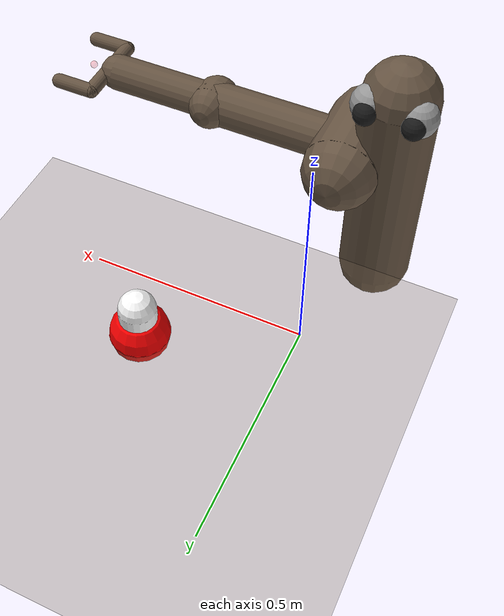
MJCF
<mujoco model="arm3d">
  <compiler inertiafromgeom="true" angle="radian" coordinate="local"/>
  <option timestep="0.01" gravity="0 0 0" iterations="20" ls_iterations="6" integrator="Euler"/>

  <default>
    <joint armature='0.04' damping="1" limited="true"/>
    <geom friction=".8 .1 .1" density="300" margin="0.002" condim="3" contype="0" conaffinity="0" rgba="0.4 0.33 0.26 1.0"/>
  </default>

  <custom>
    <!-- brax custom params -->
    <numeric data="3000" name="constraint_stiffness"/>
    <numeric data="2000" name="constraint_limit_stiffness"/>
    <numeric data="10" name="constraint_ang_damping"/>
    <numeric data="50" name="constraint_vel_damping"/>
    <numeric data="0" name="ang_damping"/>
    <numeric data="-1" name="vel_damping"/>
    <numeric data="1" name="spring_mass_scale"/>
    <numeric data="1" name="spring_inertia_scale"/>
    <numeric data="10" name="solver_maxls"/>
  </custom>

  <visual>
    <headlight ambient="0.5 0.5 0.5" diffuse="0.9 0.9 0.9" specular="0.2 0.2 0.2"/>
    <map znear="0.01" zfar="30"/>
  </visual>

  <asset>
    <texture builtin="gradient" height="100" rgb1=".58 .55 .50" rgb2="0.12 0.10 0.08" type="skybox" width="100"/>
    <texture builtin="checker" height="100" name="texplane" rgb1="0.90 0.88 0.82" rgb2="0.84 0.82 0.76" type="2d" width="100"/>
    <material name="MatPlane" reflectance="0.12" shininess="0.08" specular="0.08" texrepeat="15 15" texture="texplane"/>
  </asset>

  <worldbody>
    <light diffuse=".5 .5 .5" pos="0 0 3" dir="0 0 -1"/>
    <geom name="table" type="plane" pos="0 0.5 -0.325" size="1 1 0.1" contype="1" conaffinity="0" material="MatPlane"/>
    <camera name="fixedfar" pos="0 -1.5 1.5" zaxis="0 -1 1" mode="fixed"/>

    <body name="r_shoulder_pan_link" pos="0 -0.6 0">
      <geom name="e1" type="sphere" rgba="0.6 0.6 0.6 1" pos="-0.06 0.05 0.2" size="0.05" />
      <geom name="e2" type="sphere" rgba="0.6 0.6 0.6 1" pos=" 0.06 0.05 0.2" size="0.05" />
      <geom name="e1p" type="sphere" rgba="0.1 0.1 0.1 1" pos="-0.06 0.09 0.2" size="0.03" />
      <geom name="e2p" type="sphere" rgba="0.1 0.1 0.1 1" pos=" 0.06 0.09 0.2" size="0.03" />
      <geom name="sp" type="capsule" fromto="0 0 -0.4 0 0 0.2" size="0.1" />
      <joint name="r_shoulder_pan_joint" type="hinge" pos="0 0 0" axis="0 0 1" range="-2.2854 1.714602" damping="1.0" />

      <body name="r_shoulder_lift_link" pos="0.1 0 0">
        <geom name="sl" type="capsule" fromto="0 -0.1 0 0 0.1 0" size="0.1" />
        <joint name="r_shoulder_lift_joint" type="hinge" pos="0 0 0" axis="0 1 0" range="-0.5236 1.3963" damping="1.0" />

        <body name="r_upper_arm_roll_link" pos="0 0 0">
          <geom name="uar" type="capsule" fromto="-0.1 0 0 0.1 0 0" size="0.02" />
          <joint name="r_upper_arm_roll_joint" type="hinge" pos="0 0 0" axis="1 0 0" range="-1.5 1.7" damping="0.1" />

          <body name="r_upper_arm_link" pos="0 0 0">
            <geom name="ua" type="capsule" fromto="0 0 0 0.4 0 0" size="0.06" />

            <body name="r_elbow_flex_link" pos="0.4 0 0">
              <geom name="ef" type="capsule" fromto="0 -0.02 0 0.0 0.02 0" size="0.06" />
              <joint name="r_elbow_flex_joint" type="hinge" pos="0 0 0" axis="0 1 0" range="-2.3213 0" damping="0.1" />

              <body name="r_forearm_roll_link" pos="0 0 0">
                <geom name="fr" type="capsule" fromto="-0.1 0 0 0.1 0 0" size="0.02" />
                <joint name="r_forearm_roll_joint" type="hinge" limited="true" pos="0 0 0" axis="1 0 0" damping=".1" range="-1.5 1.5"/>

                <body name="r_forearm_link" pos="0 0 0">
                  <geom name="fa" type="capsule" fromto="0 0 0 0.291 0 0" size="0.05" />

                  <body name="r_wrist_flex_link" pos="0.321 0 0">
                    <geom name="wf" type="capsule" fromto="0 -0.02 0 0 0.02 0" size="0.01" />
                    <joint name="r_wrist_flex_joint" type="hinge" pos="0 0 0" axis="0 1 0" range="-1.094 0" damping=".1" />

                    <body name="r_wrist_roll_link" pos="0 0 0">
                      <!-- Added onboard cameras and agent site for safegoal rendering -->
                      <camera name="vision" pos="0 0 0.05" xyaxes="0 -1 0 0 0 1" fovy="90"/>
                      <camera name="vision_back" pos="0 0 0.05" xyaxes="0 1 0 0 0 1" fovy="90"/>
                      <site name="agent" pos="0.05 0 0" size="0.01" type="sphere" rgba="1 0 0 0.1"/>
                      <joint name="r_wrist_roll_joint" type="hinge" pos="0 0 0" limited="true" axis="1 0 0" damping="0.1" range="-1.5 1.5"/>
                      <body name="tips_arm" pos="0 0 0">
                        <geom name="tip_arml" type="sphere" pos="0.1 -0.1 0." size="0.01" />
                        <geom name="tip_armr" type="sphere" pos="0.1 0.1 0." size="0.01" />
                      </body>
                      <geom name="r_wrist_roll1" type="capsule" fromto="0 -0.1 0. 0.0 +0.1 0" size="0.02" contype="0" conaffinity="1" />
                      <geom name="r_wrist_roll2" type="capsule" fromto="0 -0.1 0. 0.1 -0.1 0" size="0.02" contype="0" conaffinity="1" />
                      <geom name="r_wrist_roll3" type="capsule" fromto="0 +0.1 0. 0.1 +0.1 0." size="0.02" contype="0" conaffinity="1" />
                    </body>
                  </body>
                </body>
              </body>
            </body>
          </body>
        </body>
      </body>
    </body>

    <body name="object" pos="0.45 -0.05 -0.275" >
      <!-- Density changed to 1 from 0.00001 for brax. -->
      <geom rgba="1 1 1 0" type="sphere" size="0.05 0.05 0.05" density="1" conaffinity="0"/>
      <geom name="object_geom" rgba="1 1 1 1" type="capsule" size="0.05 0.05 0.05" density="1" contype="1" conaffinity="0"/>
      <joint name="obj_slidey" type="slide" pos="0 0 0" axis="0 1 0" range="-10.3213 10.3" damping="0.5"/>
      <joint name="obj_slidex" type="slide" pos="0 0 0" axis="1 0 0" range="-10.3213 10.3" damping="0.5"/>
    </body>

    <body name="goal" pos="0.45 -0.05 -0.3230">
      <geom rgba="1 0 0 1" type="capsule" size="0.08 0.001 0.1" density='0.00001' contype="0" conaffinity="0"/>
      <joint name="goal_slidey" type="slide" pos="0 0 0" axis="0 1 0" range="-10.3213 10.3" damping="0.5"/>
      <joint name="goal_slidex" type="slide" pos="0 0 0" axis="1 0 0" range="-10.3213 10.3" damping="0.5"/>
    </body>
  </worldbody>

  <actuator>
    <motor joint="r_shoulder_pan_joint" ctrlrange="-2.0 2.0" ctrllimited="true" />
    <motor joint="r_shoulder_lift_joint" ctrlrange="-2.0 2.0" ctrllimited="true" />
    <motor joint="r_upper_arm_roll_joint" ctrlrange="-2.0 2.0" ctrllimited="true" />
    <motor joint="r_elbow_flex_joint" ctrlrange="-2.0 2.0" ctrllimited="true" />
    <motor joint="r_forearm_roll_joint" ctrlrange="-2.0 2.0" ctrllimited="true" />
    <motor joint="r_wrist_flex_joint" ctrlrange="-2.0 2.0" ctrllimited="true" />
    <motor joint="r_wrist_roll_joint" ctrlrange="-2.0 2.0" ctrllimited="true"/>
  </actuator>

</mujoco>
